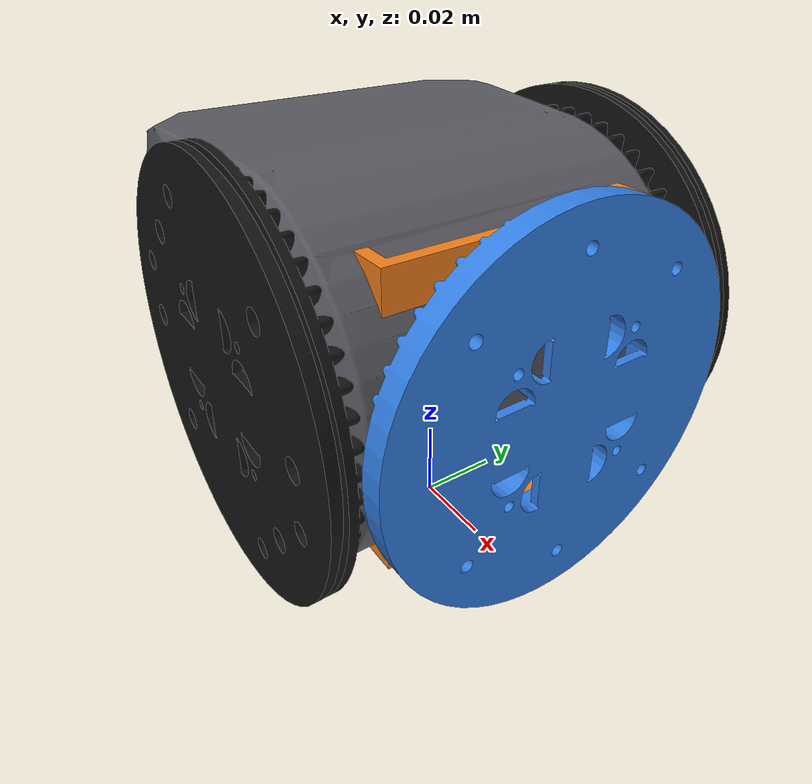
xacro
<?xml version="1.0"?>
<robot name="my_robot" xmlns:xacro="http://www.ros.org/wiki/xacro">

  <!-- ROS namespace of this module, e.g. module_1. Empty for a single robot. -->
  <xacro:arg name="namespace" default="" />
  <xacro:property name="namespace" value="$(arg namespace)" />
  <xacro:property name="frame_prefix" value="${namespace + '/' if namespace else ''}" />

  <xacro:include filename="$(find my_robot_description)/urdf/inertial.xacro" />
  <xacro:include filename="$(find my_robot_description)/urdf/my_robot_core.xacro" />
  <xacro:include filename="$(find my_robot_description)/urdf/my_robot.ros2_control.xacro" />
  <xacro:include filename="$(find my_robot_description)/urdf/my_robot.gazebo.xacro" />

</robot>

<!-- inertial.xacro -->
<!-- GENERATED by scripts/compute_inertia.py from the meshes. Do not edit by hand. -->
<robot xmlns:xacro="http://www.ros.org/wiki/xacro">

  <!-- base_link: 139.95 cm^3, mass 1010 kg/m^3, solid -->
  <xacro:macro name="base_link_inertial">
    <inertial>
      <origin xyz="-0.025845 -0.000006 0.052571" rpy="0 0 0" />
      <mass value="0.141348" />
      <inertia ixx="2.5098e-04" ixy="1.8586e-08" ixz="-1.9180e-08" iyy="2.0529e-04" iyz="-1.9254e-09" izz="2.5711e-04" />
    </inertial>
  </xacro:macro>

  <!-- left_wheel: 51.15 cm^3, mass 1010 kg/m^3, solid -->
  <xacro:macro name="left_wheel_inertial">
    <inertial>
      <origin xyz="0.000000 0.006125 0.000000" rpy="0 0 0" />
      <mass value="0.051660" />
      <inertia ixx="3.5502e-05" ixy="-2.0292e-13" ixz="2.2746e-07" iyy="7.0049e-05" iyz="-2.5054e-13" izz="3.5484e-05" />
    </inertial>
  </xacro:macro>

  <!-- right_wheel: 51.15 cm^3, mass 1010 kg/m^3, solid -->
  <xacro:macro name="right_wheel_inertial">
    <inertial>
      <origin xyz="0.000000 -0.001125 0.000000" rpy="0 0 0" />
      <mass value="0.051660" />
      <inertia ixx="3.5725e-05" ixy="-2.5482e-13" ixz="-2.2746e-07" iyy="7.0049e-05" iyz="-1.0091e-12" izz="3.5261e-05" />
    </inertial>
  </xacro:macro>

  <!-- tilt_body: 28.39 cm^3, mass 1010 kg/m^3, solid -->
  <xacro:macro name="tilt_body_inertial">
    <inertial>
      <origin xyz="0.025071 -0.000001 0.000000" rpy="0 0 0" />
      <mass value="0.028671" />
      <inertia ixx="3.4623e-05" ixy="6.4784e-10" ixz="-6.3903e-11" iyy="2.8181e-05" iyz="-7.3076e-12" izz="3.3263e-05" />
    </inertial>
  </xacro:macro>

  <!-- pan_face: 37.11 cm^3, mass 1010 kg/m^3, solid -->
  <xacro:macro name="pan_face_inertial">
    <inertial>
      <origin xyz="-0.004029 0.000000 0.000000" rpy="0 0 0" />
      <mass value="0.037477" />
      <inertia ixx="4.3570e-05" ixy="2.4442e-11" ixz="2.5049e-12" iyy="2.2137e-05" iyz="1.3693e-11" izz="2.2237e-05" />
    </inertial>
  </xacro:macro>

</robot>

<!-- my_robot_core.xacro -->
<robot xmlns:xacro="http://www.ros.org/wiki/xacro">

  <!-- Joint locations [m] -->
  <xacro:property name="axle_x" value="-0.004905" />        <!-- wheels and tilt share one axis -->
  <xacro:property name="axle_z" value="0.05257" />
  <xacro:property name="left_wheel_y" value="0.0422" />
  <xacro:property name="right_wheel_y" value="-0.0472" />
  <xacro:property name="pan_face_x" value="0.05275" />      <!-- from tilt_body origin -->

  <!-- Actuator limits -->
  <xacro:property name="effort_limit" value="10" />
  <xacro:property name="velocity_limit" value="1" />

  <!-- Colors (the .obj meshes have no .mtl files, so they would render white) -->
  <material name="body_gray"><color rgba="0.35 0.35 0.38 1" /></material>
  <material name="wheel_black"><color rgba="0.08 0.08 0.08 1" /></material>
  <material name="tilt_orange"><color rgba="0.95 0.50 0.10 1" /></material>
  <material name="face_blue"><color rgba="0.20 0.50 0.90 1" /></material>

  <!-- Mesh orientations from the CAD export -->
  <xacro:property name="half_pi" value="${pi / 2}" />

  <xacro:macro name="link_meshes" params="name xyz rpy material collision_xyz:=''">
    <visual>
      <origin xyz="${xyz}" rpy="${rpy}" />
      <geometry>
        <mesh filename="package://my_robot_description/meshes/${name}_visual.obj" />
      </geometry>
      <material name="${material}" />
    </visual>
    <collision>
      <origin xyz="${collision_xyz or xyz}" rpy="${rpy}" />
      <geometry>
        <mesh filename="package://my_robot_description/meshes/${name}_collision.stl" />
      </geometry>
    </collision>
  </xacro:macro>

  <!-- Drive wheel: rotates about +y, positive velocity drives forward -->
  <xacro:macro name="wheel" params="side y mesh_xyz mesh_rpy">
    <link name="${side}_wheel">
      <xacro:call macro="${side}_wheel_inertial" />
      <xacro:link_meshes name="${side}_wheel" xyz="${mesh_xyz}" rpy="${mesh_rpy}"
        material="wheel_black" />
    </link>

    <joint name="${side}_wheel_joint" type="continuous">
      <origin xyz="${axle_x} ${y} ${axle_z}" rpy="0 0 0" />
      <parent link="base_link" />
      <child link="${side}_wheel" />
      <axis xyz="0 1 0" />
      <limit effort="${effort_limit}" velocity="${velocity_limit}" />
    </joint>
  </xacro:macro>

  <!-- Base -->
  <link name="base_link">
    <xacro:base_link_inertial />
    <xacro:link_meshes name="base_link" material="body_gray"
      xyz="-0.007407 0 0.052843" rpy="0 0 0"
      collision_xyz="-0.007407 0 0.052841" />
  </link>

  <!-- Wheels -->
  <xacro:wheel side="left" y="${left_wheel_y}"
    mesh_xyz="0 0.00425 0" mesh_rpy="0 0 ${-half_pi}" />
  <xacro:wheel side="right" y="${right_wheel_y}"
    mesh_xyz="0 0.00075 0" mesh_rpy="${-half_pi} ${-half_pi} 0" />

  <!-- Tilt body, pitches about the wheel axle -->
  <link name="tilt_body">
    <xacro:tilt_body_inertial />
    <xacro:link_meshes name="tilt_body" material="tilt_orange"
      xyz="0.006875 0 0" rpy="0 ${pi} 0"
      collision_xyz="0.006816 0 -0.000076" />
  </link>

  <joint name="tilt_body_joint" type="revolute">
    <origin xyz="${axle_x} 0 ${axle_z}" rpy="0 0 0" />
    <parent link="base_link" />
    <child link="tilt_body" />
    <axis xyz="0 -1 0" />
    <limit effort="${effort_limit}" velocity="${velocity_limit}" lower="${-pi}" upper="${pi}" />
  </joint>

  <!-- Pan face, spins about the forward axis at the front of the tilt body -->
  <link name="pan_face">
    <xacro:pan_face_inertial />
    <xacro:link_meshes name="pan_face" material="face_blue"
      xyz="-0.007875 0 0" rpy="${half_pi} 0 ${-half_pi}" />
  </link>

  <joint name="pan_face_joint" type="continuous">
    <origin xyz="${pan_face_x} 0 0" rpy="0 0 0" />
    <parent link="tilt_body" />
    <child link="pan_face" />
    <axis xyz="-1 0 0" />
    <limit effort="${effort_limit}" velocity="${velocity_limit}" />
  </joint>

</robot>
